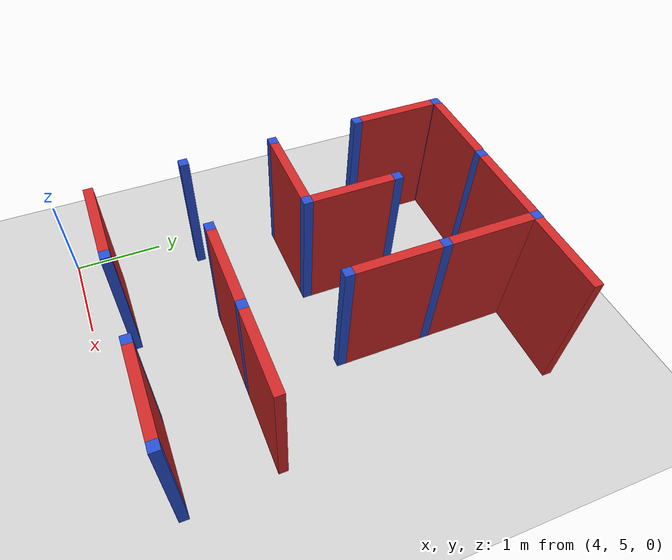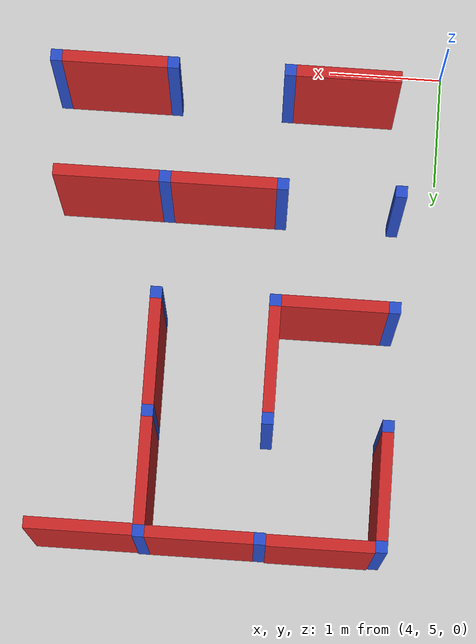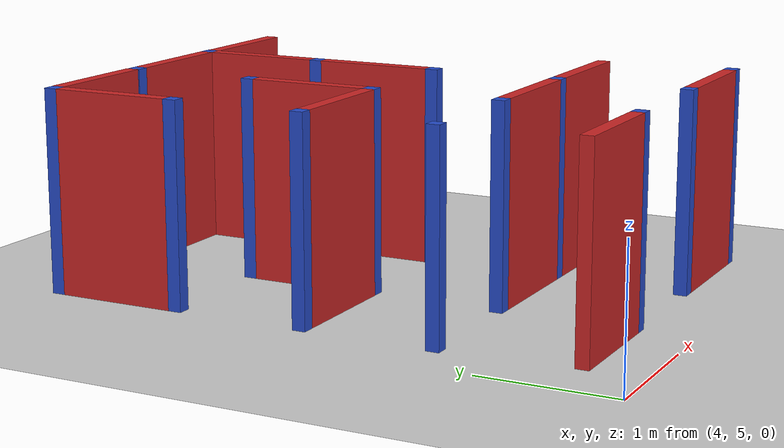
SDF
<sdf version="1.7">
 <world name="default">
  <model name="ground_plane">
   <static>1</static>
   <link name="link">
    <collision name="collision">
     <geometry><plane><normal>0 0 1</normal><size>100 100</size></plane></geometry>
     <surface><friction><ode><mu>100</mu><mu2>50</mu2></ode></friction></surface>
    </collision>
    <visual name="visual">
     <cast_shadows>0</cast_shadows>
     <geometry><plane><normal>0 0 1</normal><size>100 100</size></plane></geometry>
     <material>
      <script><uri>file://media/materials/scripts/gazebo.material</uri><name>Gazebo/Grey</name></script>
     </material>
    </visual>
   </link>
  </model>
  <model name="deneme">
   <link name="Joint_10_-6">
    <pose>10 -6 0 0 -0 0</pose>
    <visual name="Wall_2_Visual">
     <pose>0 0 0.75 0 -0 0</pose>
     <geometry><box><size>0.1 0.1 1.5</size></box></geometry>
     <material>
      <script><uri>file://media/materials/scripts/gazebo.material</uri><name>Gazebo/Blue</name></script>
      <ambient>0.996078 0.47451 0.0196078 1</ambient>
      <shader type="pixel"/>
     </material>
     <meta><layer>0</layer></meta>
    </visual>
    <collision name="Wall_2_Collision">
     <pose>0 0 0.75 0 -0 0</pose>
     <geometry><box><size>0.1 0.1 1.5</size></box></geometry>
     <surface>
      <friction>
       <ode><mu>1</mu><mu2>1</mu2><fdir1>0 0 0</fdir1><slip1>0</slip1><slip2>0</slip2></ode>
       <torsional>
        <coefficient>1</coefficient>
        <patch_radius>0</patch_radius>
        <surface_radius>0</surface_radius>
        <use_patch_radius>1</use_patch_radius>
        <ode><slip>0</slip></ode>
       </torsional>
      </friction>
      <bounce><restitution_coefficient>0</restitution_coefficient><threshold>1e+06</threshold></bounce>
      <contact>
       <collide_without_contact>0</collide_without_contact>
       <collide_without_contact_bitmask>1</collide_without_contact_bitmask>
       <collide_bitmask>1</collide_bitmask>
       <ode>
        <soft_cfm>0</soft_cfm>
        <soft_erp>0.2</soft_erp>
        <kp>1e+13</kp>
        <kd>1</kd>
        <max_vel>0.01</max_vel>
        <min_depth>0</min_depth>
       </ode>
       <bullet>
        <split_impulse>1</split_impulse>
        <split_impulse_penetration_threshold>-0.01</split_impulse_penetration_threshold>
        <soft_cfm>0</soft_cfm>
        <soft_erp>0.2</soft_erp>
        <kp>1e+13</kp>
        <kd>1</kd>
       </bullet>
      </contact>
     </surface>
    </collision>
   </link>
   <link name="Joint_10_-7">
    <pose>10 -7 0 0 -0 0</pose>
    <visual name="Wall_2_Visual">
     <pose>0 0 0.75 0 -0 0</pose>
     <geometry><box><size>0.1 0.1 1.5</size></box></geometry>
     <material>
      <script><uri>file://media/materials/scripts/gazebo.material</uri><name>Gazebo/Blue</name></script>
      <ambient>0.996078 0.47451 0.0196078 1</ambient>
      <shader type="pixel"/>
     </material>
     <meta><layer>0</layer></meta>
    </visual>
    <collision name="Wall_2_Collision">
     <pose>0 0 0.75 0 -0 0</pose>
     <geometry><box><size>0.1 0.1 1.5</size></box></geometry>
     <surface>
      <friction>
       <ode><mu>1</mu><mu2>1</mu2><fdir1>0 0 0</fdir1><slip1>0</slip1><slip2>0</slip2></ode>
       <torsional>
        <coefficient>1</coefficient>
        <patch_radius>0</patch_radius>
        <surface_radius>0</surface_radius>
        <use_patch_radius>1</use_patch_radius>
        <ode><slip>0</slip></ode>
       </torsional>
      </friction>
      <bounce><restitution_coefficient>0</restitution_coefficient><threshold>1e+06</threshold></bounce>
      <contact>
       <collide_without_contact>0</collide_without_contact>
       <collide_without_contact_bitmask>1</collide_without_contact_bitmask>
       <collide_bitmask>1</collide_bitmask>
       <ode>
        <soft_cfm>0</soft_cfm>
        <soft_erp>0.2</soft_erp>
        <kp>1e+13</kp>
        <kd>1</kd>
        <max_vel>0.01</max_vel>
        <min_depth>0</min_depth>
       </ode>
       <bullet>
        <split_impulse>1</split_impulse>
        <split_impulse_penetration_threshold>-0.01</split_impulse_penetration_threshold>
        <soft_cfm>0</soft_cfm>
        <soft_erp>0.2</soft_erp>
        <kp>1e+13</kp>
        <kd>1</kd>
       </bullet>
      </contact>
     </surface>
    </collision>
   </link>
   <link name="Joint_10_-8">
    <pose>10 -8 0 0 -0 0</pose>
    <visual name="Wall_2_Visual">
     <pose>0 0 0.75 0 -0 0</pose>
     <geometry><box><size>0.1 0.1 1.5</size></box></geometry>
     <material>
      <script><uri>file://media/materials/scripts/gazebo.material</uri><name>Gazebo/Blue</name></script>
      <ambient>0.996078 0.47451 0.0196078 1</ambient>
      <shader type="pixel"/>
     </material>
     <meta><layer>0</layer></meta>
    </visual>
    <collision name="Wall_2_Collision">
     <pose>0 0 0.75 0 -0 0</pose>
     <geometry><box><size>0.1 0.1 1.5</size></box></geometry>
     <surface>
      <friction>
       <ode><mu>1</mu><mu2>1</mu2><fdir1>0 0 0</fdir1><slip1>0</slip1><slip2>0</slip2></ode>
       <torsional>
        <coefficient>1</coefficient>
        <patch_radius>0</patch_radius>
        <surface_radius>0</surface_radius>
        <use_patch_radius>1</use_patch_radius>
        <ode><slip>0</slip></ode>
       </torsional>
      </friction>
      <bounce><restitution_coefficient>0</restitution_coefficient><threshold>1e+06</threshold></bounce>
      <contact>
       <collide_without_contact>0</collide_without_contact>
       <collide_without_contact_bitmask>1</collide_without_contact_bitmask>
       <collide_bitmask>1</collide_bitmask>
       <ode>
        <soft_cfm>0</soft_cfm>
        <soft_erp>0.2</soft_erp>
        <kp>1e+13</kp>
        <kd>1</kd>
        <max_vel>0.01</max_vel>
        <min_depth>0</min_depth>
       </ode>
       <bullet>
        <split_impulse>1</split_impulse>
        <split_impulse_penetration_threshold>-0.01</split_impulse_penetration_threshold>
        <soft_cfm>0</soft_cfm>
        <soft_erp>0.2</soft_erp>
        <kp>1e+13</kp>
        <kd>1</kd>
       </bullet>
      </contact>
     </surface>
    </collision>
   </link>
   <link name="Joint_10_-9">
    <pose>10 -9 0 0 -0 0</pose>
    <visual name="Wall_2_Visual">
     <pose>0 0 0.75 0 -0 0</pose>
     <geometry><box><size>0.1 0.1 1.5</size></box></geometry>
     <material>
      <script><uri>file://media/materials/scripts/gazebo.material</uri><name>Gazebo/Blue</name></script>
      <ambient>0.996078 0.47451 0.0196078 1</ambient>
      <shader type="pixel"/>
     </material>
     <meta><layer>0</layer></meta>
    </visual>
    <collision name="Wall_2_Collision">
     <pose>0 0 0.75 0 -0 0</pose>
     <geometry><box><size>0.1 0.1 1.5</size></box></geometry>
     <surface>
      <friction>
       <ode><mu>1</mu><mu2>1</mu2><fdir1>0 0 0</fdir1><slip1>0</slip1><slip2>0</slip2></ode>
       <torsional>
        <coefficient>1</coefficient>
        <patch_radius>0</patch_radius>
        <surface_radius>0</surface_radius>
        <use_patch_radius>1</use_patch_radius>
        <ode><slip>0</slip></ode>
       </torsional>
      </friction>
      <bounce><restitution_coefficient>0</restitution_coefficient><threshold>1e+06</threshold></bounce>
      <contact>
       <collide_without_contact>0</collide_without_contact>
       <collide_without_contact_bitmask>1</collide_without_contact_bitmask>
       <collide_bitmask>1</collide_bitmask>
       <ode>
        <soft_cfm>0</soft_cfm>
        <soft_erp>0.2</soft_erp>
        <kp>1e+13</kp>
        <kd>1</kd>
        <max_vel>0.01</max_vel>
        <min_depth>0</min_depth>
       </ode>
       <bullet>
        <split_impulse>1</split_impulse>
        <split_impulse_penetration_threshold>-0.01</split_impulse_penetration_threshold>
        <soft_cfm>0</soft_cfm>
        <soft_erp>0.2</soft_erp>
        <kp>1e+13</kp>
        <kd>1</kd>
       </bullet>
      </contact>
     </surface>
    </collision>
   </link>
   <link name="Joint_11_-10">
    <pose>11 -10 0 0 -0 0</pose>
    <visual name="Wall_2_Visual">
     <pose>0 0 0.75 0 -0 0</pose>
     <geometry><box><size>0.1 0.1 1.5</size></box></geometry>
     <material>
      <script><uri>file://media/materials/scripts/gazebo.material</uri><name>Gazebo/Blue</name></script>
      <ambient>0.996078 0.47451 0.0196078 1</ambient>
      <shader type="pixel"/>
     </material>
     <meta><layer>0</layer></meta>
    </visual>
    <collision name="Wall_2_Collision">
     <pose>0 0 0.75 0 -0 0</pose>
     <geometry><box><size>0.1 0.1 1.5</size></box></geometry>
     <surface>
      <friction>
       <ode><mu>1</mu><mu2>1</mu2><fdir1>0 0 0</fdir1><slip1>0</slip1><slip2>0</slip2></ode>
       <torsional>
        <coefficient>1</coefficient>
        <patch_radius>0</patch_radius>
        <surface_radius>0</surface_radius>
        <use_patch_radius>1</use_patch_radius>
        <ode><slip>0</slip></ode>
       </torsional>
      </friction>
      <bounce><restitution_coefficient>0</restitution_coefficient><threshold>1e+06</threshold></bounce>
      <contact>
       <collide_without_contact>0</collide_without_contact>
       <collide_without_contact_bitmask>1</collide_without_contact_bitmask>
       <collide_bitmask>1</collide_bitmask>
       <ode>
        <soft_cfm>0</soft_cfm>
        <soft_erp>0.2</soft_erp>
        <kp>1e+13</kp>
        <kd>1</kd>
        <max_vel>0.01</max_vel>
        <min_depth>0</min_depth>
       </ode>
       <bullet>
        <split_impulse>1</split_impulse>
        <split_impulse_penetration_threshold>-0.01</split_impulse_penetration_threshold>
        <soft_cfm>0</soft_cfm>
        <soft_erp>0.2</soft_erp>
        <kp>1e+13</kp>
        <kd>1</kd>
       </bullet>
      </contact>
     </surface>
    </collision>
   </link>
   <link name="Joint_11_-6">
    <pose>11 -6 0 0 -0 0</pose>
    <visual name="Wall_2_Visual">
     <pose>0 0 0.75 0 -0 0</pose>
     <geometry><box><size>0.1 0.1 1.5</size></box></geometry>
     <material>
      <script><uri>file://media/materials/scripts/gazebo.material</uri><name>Gazebo/Blue</name></script>
      <ambient>0.996078 0.47451 0.0196078 1</ambient>
      <shader type="pixel"/>
     </material>
     <meta><layer>0</layer></meta>
    </visual>
    <collision name="Wall_2_Collision">
     <pose>0 0 0.75 0 -0 0</pose>
     <geometry><box><size>0.1 0.1 1.5</size></box></geometry>
     <surface>
      <friction>
       <ode><mu>1</mu><mu2>1</mu2><fdir1>0 0 0</fdir1><slip1>0</slip1><slip2>0</slip2></ode>
       <torsional>
        <coefficient>1</coefficient>
        <patch_radius>0</patch_radius>
        <surface_radius>0</surface_radius>
        <use_patch_radius>1</use_patch_radius>
        <ode><slip>0</slip></ode>
       </torsional>
      </friction>
      <bounce><restitution_coefficient>0</restitution_coefficient><threshold>1e+06</threshold></bounce>
      <contact>
       <collide_without_contact>0</collide_without_contact>
       <collide_without_contact_bitmask>1</collide_without_contact_bitmask>
       <collide_bitmask>1</collide_bitmask>
       <ode>
        <soft_cfm>0</soft_cfm>
        <soft_erp>0.2</soft_erp>
        <kp>1e+13</kp>
        <kd>1</kd>
        <max_vel>0.01</max_vel>
        <min_depth>0</min_depth>
       </ode>
       <bullet>
        <split_impulse>1</split_impulse>
        <split_impulse_penetration_threshold>-0.01</split_impulse_penetration_threshold>
        <soft_cfm>0</soft_cfm>
        <soft_erp>0.2</soft_erp>
        <kp>1e+13</kp>
        <kd>1</kd>
       </bullet>
      </contact>
     </surface>
    </collision>
   </link>
   <link name="Joint_11_-7">
    <pose>11 -7 0 0 -0 0</pose>
    <visual name="Wall_2_Visual">
     <pose>0 0 0.75 0 -0 0</pose>
     <geometry><box><size>0.1 0.1 1.5</size></box></geometry>
     <material>
      <script><uri>file://media/materials/scripts/gazebo.material</uri><name>Gazebo/Blue</name></script>
      <ambient>0.996078 0.47451 0.0196078 1</ambient>
      <shader type="pixel"/>
     </material>
     <meta><layer>0</layer></meta>
    </visual>
    <collision name="Wall_2_Collision">
     <pose>0 0 0.75 0 -0 0</pose>
     <geometry><box><size>0.1 0.1 1.5</size></box></geometry>
     <surface>
      <friction>
       <ode><mu>1</mu><mu2>1</mu2><fdir1>0 0 0</fdir1><slip1>0</slip1><slip2>0</slip2></ode>
       <torsional>
        <coefficient>1</coefficient>
        <patch_radius>0</patch_radius>
        <surface_radius>0</surface_radius>
        <use_patch_radius>1</use_patch_radius>
        <ode><slip>0</slip></ode>
       </torsional>
      </friction>
      <bounce><restitution_coefficient>0</restitution_coefficient><threshold>1e+06</threshold></bounce>
      <contact>
       <collide_without_contact>0</collide_without_contact>
       <collide_without_contact_bitmask>1</collide_without_contact_bitmask>
       <collide_bitmask>1</collide_bitmask>
       <ode>
        <soft_cfm>0</soft_cfm>
        <soft_erp>0.2</soft_erp>
        <kp>1e+13</kp>
        <kd>1</kd>
        <max_vel>0.01</max_vel>
        <min_depth>0</min_depth>
       </ode>
       <bullet>
        <split_impulse>1</split_impulse>
        <split_impulse_penetration_threshold>-0.01</split_impulse_penetration_threshold>
        <soft_cfm>0</soft_cfm>
        <soft_erp>0.2</soft_erp>
        <kp>1e+13</kp>
        <kd>1</kd>
       </bullet>
      </contact>
     </surface>
    </collision>
   </link>
   <link name="Joint_11_-8">
    <pose>11 -8 0 0 -0 0</pose>
    <visual name="Wall_2_Visual">
     <pose>0 0 0.75 0 -0 0</pose>
     <geometry><box><size>0.1 0.1 1.5</size></box></geometry>
     <material>
      <script><uri>file://media/materials/scripts/gazebo.material</uri><name>Gazebo/Blue</name></script>
      <ambient>0.996078 0.47451 0.0196078 1</ambient>
      <shader type="pixel"/>
     </material>
     <meta><layer>0</layer></meta>
    </visual>
    <collision name="Wall_2_Collision">
     <pose>0 0 0.75 0 -0 0</pose>
     <geometry><box><size>0.1 0.1 1.5</size></box></geometry>
     <surface>
      <friction>
       <ode><mu>1</mu><mu2>1</mu2><fdir1>0 0 0</fdir1><slip1>0</slip1><slip2>0</slip2></ode>
       <torsional>
        <coefficient>1</coefficient>
        <patch_radius>0</patch_radius>
        <surface_radius>0</surface_radius>
        <use_patch_radius>1</use_patch_radius>
        <ode><slip>0</slip></ode>
       </torsional>
      </friction>
      <bounce><restitution_coefficient>0</restitution_coefficient><threshold>1e+06</threshold></bounce>
      <contact>
       <collide_without_contact>0</collide_without_contact>
       <collide_without_contact_bitmask>1</collide_without_contact_bitmask>
       <collide_bitmask>1</collide_bitmask>
       <ode>
        <soft_cfm>0</soft_cfm>
        <soft_erp>0.2</soft_erp>
        <kp>1e+13</kp>
        <kd>1</kd>
        <max_vel>0.01</max_vel>
        <min_depth>0</min_depth>
       </ode>
       <bullet>
        <split_impulse>1</split_impulse>
        <split_impulse_penetration_threshold>-0.01</split_impulse_penetration_threshold>
        <soft_cfm>0</soft_cfm>
        <soft_erp>0.2</soft_erp>
        <kp>1e+13</kp>
        <kd>1</kd>
       </bullet>
      </contact>
     </surface>
    </collision>
   </link>
   <link name="Joint_11_-9">
    <pose>11 -9 0 0 -0 0</pose>
    <visual name="Wall_2_Visual">
     <pose>0 0 0.75 0 -0 0</pose>
     <geometry><box><size>0.1 0.1 1.5</size></box></geometry>
     <material>
      <script><uri>file://media/materials/scripts/gazebo.material</uri><name>Gazebo/Blue</name></script>
      <ambient>0.996078 0.47451 0.0196078 1</ambient>
      <shader type="pixel"/>
     </material>
     <meta><layer>0</layer></meta>
    </visual>
    <collision name="Wall_2_Collision">
     <pose>0 0 0.75 0 -0 0</pose>
     <geometry><box><size>0.1 0.1 1.5</size></box></geometry>
     <surface>
      <friction>
       <ode><mu>1</mu><mu2>1</mu2><fdir1>0 0 0</fdir1><slip1>0</slip1><slip2>0</slip2></ode>
       <torsional>
        <coefficient>1</coefficient>
        <patch_radius>0</patch_radius>
        <surface_radius>0</surface_radius>
        <use_patch_radius>1</use_patch_radius>
        <ode><slip>0</slip></ode>
       </torsional>
      </friction>
      <bounce><restitution_coefficient>0</restitution_coefficient><threshold>1e+06</threshold></bounce>
      <contact>
       <collide_without_contact>0</collide_without_contact>
       <collide_without_contact_bitmask>1</collide_without_contact_bitmask>
       <collide_bitmask>1</collide_bitmask>
       <ode>
        <soft_cfm>0</soft_cfm>
        <soft_erp>0.2</soft_erp>
        <kp>1e+13</kp>
        <kd>1</kd>
        <max_vel>0.01</max_vel>
        <min_depth>0</min_depth>
       </ode>
       <bullet>
        <split_impulse>1</split_impulse>
        <split_impulse_penetration_threshold>-0.01</split_impulse_penetration_threshold>
        <soft_cfm>0</soft_cfm>
        <soft_erp>0.2</soft_erp>
        <kp>1e+13</kp>
        <kd>1</kd>
       </bullet>
      </contact>
     </surface>
    </collision>
   </link>
   <link name="Joint_12_-10">
    <pose>12 -10 0 0 -0 0</pose>
    <visual name="Wall_2_Visual">
     <pose>0 0 0.75 0 -0 0</pose>
     <geometry><box><size>0.1 0.1 1.5</size></box></geometry>
     <material>
      <script><uri>file://media/materials/scripts/gazebo.material</uri><name>Gazebo/Blue</name></script>
      <ambient>0.996078 0.47451 0.0196078 1</ambient>
      <shader type="pixel"/>
     </material>
     <meta><layer>0</layer></meta>
    </visual>
    <collision name="Wall_2_Collision">
     <pose>0 0 0.75 0 -0 0</pose>
     <geometry><box><size>0.1 0.1 1.5</size></box></geometry>
     <surface>
      <friction>
       <ode><mu>1</mu><mu2>1</mu2><fdir1>0 0 0</fdir1><slip1>0</slip1><slip2>0</slip2></ode>
       <torsional>
        <coefficient>1</coefficient>
        <patch_radius>0</patch_radius>
        <surface_radius>0</surface_radius>
        <use_patch_radius>1</use_patch_radius>
        <ode><slip>0</slip></ode>
       </torsional>
      </friction>
      <bounce><restitution_coefficient>0</restitution_coefficient><threshold>1e+06</threshold></bounce>
      <contact>
       <collide_without_contact>0</collide_without_contact>
       <collide_without_contact_bitmask>1</collide_without_contact_bitmask>
       <collide_bitmask>1</collide_bitmask>
       <ode>
        <soft_cfm>0</soft_cfm>
        <soft_erp>0.2</soft_erp>
        <kp>1e+13</kp>
        <kd>1</kd>
        <max_vel>0.01</max_vel>
        <min_depth>0</min_depth>
       </ode>
       <bullet>
        <split_impulse>1</split_impulse>
        <split_impulse_penetration_threshold>-0.01</split_impulse_penetration_threshold>
        <soft_cfm>0</soft_cfm>
        <soft_erp>0.2</soft_erp>
        <kp>1e+13</kp>
        <kd>1</kd>
       </bullet>
      </contact>
     </surface>
    </collision>
   </link>
   <link name="Joint_12_-6">
    <pose>12 -6 0 0 -0 0</pose>
    <visual name="Wall_2_Visual">
     <pose>0 0 0.75 0 -0 0</pose>
     <geometry><box><size>0.1 0.1 1.5</size></box></geometry>
     <material>
      <script><uri>file://media/materials/scripts/gazebo.material</uri><name>Gazebo/Blue</name></script>
      <ambient>0.996078 0.47451 0.0196078 1</ambient>
      <shader type="pixel"/>
     </material>
     <meta><layer>0</layer></meta>
    </visual>
    <collision name="Wall_2_Collision">
     <pose>0 0 0.75 0 -0 0</pose>
     <geometry><box><size>0.1 0.1 1.5</size></box></geometry>
     <surface>
      <friction>
       <ode><mu>1</mu><mu2>1</mu2><fdir1>0 0 0</fdir1><slip1>0</slip1><slip2>0</slip2></ode>
       <torsional>
        <coefficient>1</coefficient>
        <patch_radius>0</patch_radius>
        <surface_radius>0</surface_radius>
        <use_patch_radius>1</use_patch_radius>
        <ode><slip>0</slip></ode>
       </torsional>
      </friction>
      <bounce><restitution_coefficient>0</restitution_coefficient><threshold>1e+06</threshold></bounce>
      <contact>
       <collide_without_contact>0</collide_without_contact>
       <collide_without_contact_bitmask>1</collide_without_contact_bitmask>
       <collide_bitmask>1</collide_bitmask>
       <ode>
        <soft_cfm>0</soft_cfm>
        <soft_erp>0.2</soft_erp>
        <kp>1e+13</kp>
        <kd>1</kd>
        <max_vel>0.01</max_vel>
        <min_depth>0</min_depth>
       </ode>
       <bullet>
        <split_impulse>1</split_impulse>
        <split_impulse_penetration_threshold>-0.01</split_impulse_penetration_threshold>
        <soft_cfm>0</soft_cfm>
        <soft_erp>0.2</soft_erp>
        <kp>1e+13</kp>
        <kd>1</kd>
       </bullet>
      </contact>
     </surface>
    </collision>
   </link>
   <link name="Joint_12_-7">
    <pose>12 -7 0 0 -0 0</pose>
    <visual name="Wall_2_Visual">
     <pose>0 0 0.75 0 -0 0</pose>
     <geometry><box><size>0.1 0.1 1.5</size></box></geometry>
     <material>
      <script><uri>file://media/materials/scripts/gazebo.material</uri><name>Gazebo/Blue</name></script>
      <ambient>0.996078 0.47451 0.0196078 1</ambient>
      <shader type="pixel"/>
     </material>
     <meta><layer>0</layer></meta>
    </visual>
    <collision name="Wall_2_Collision">
     <pose>0 0 0.75 0 -0 0</pose>
     <geometry><box><size>0.1 0.1 1.5</size></box></geometry>
     <surface>
      <friction>
       <ode><mu>1</mu><mu2>1</mu2><fdir1>0 0 0</fdir1><slip1>0</slip1><slip2>0</slip2></ode>
       <torsional>
        <coefficient>1</coefficient>
        <patch_radius>0</patch_radius>
        <surface_radius>0</surface_radius>
        <use_patch_radius>1</use_patch_radius>
        <ode><slip>0</slip></ode>
       </torsional>
      </friction>
      <bounce><restitution_coefficient>0</restitution_coefficient><threshold>1e+06</threshold></bounce>
      <contact>
       <collide_without_contact>0</collide_without_contact>
       <collide_without_contact_bitmask>1</collide_without_contact_bitmask>
       <collide_bitmask>1</collide_bitmask>
       <ode>
        <soft_cfm>0</soft_cfm>
        <soft_erp>0.2</soft_erp>
        <kp>1e+13</kp>
        <kd>1</kd>
        <max_vel>0.01</max_vel>
        <min_depth>0</min_depth>
       </ode>
       <bullet>
        <split_impulse>1</split_impulse>
        <split_impulse_penetration_threshold>-0.01</split_impulse_penetration_threshold>
        <soft_cfm>0</soft_cfm>
        <soft_erp>0.2</soft_erp>
        <kp>1e+13</kp>
        <kd>1</kd>
       </bullet>
      </contact>
     </surface>
    </collision>
   </link>
   <link name="Joint_12_-8">
    <pose>12 -8 0 0 -0 0</pose>
    <visual name="Wall_2_Visual">
     <pose>0 0 0.75 0 -0 0</pose>
     <geometry><box><size>0.1 0.1 1.5</size></box></geometry>
     <material>
      <script><uri>file://media/materials/scripts/gazebo.material</uri><name>Gazebo/Blue</name></script>
      <ambient>0.996078 0.47451 0.0196078 1</ambient>
      <shader type="pixel"/>
     </material>
     <meta><layer>0</layer></meta>
    </visual>
    <collision name="Wall_2_Collision">
     <pose>0 0 0.75 0 -0 0</pose>
     <geometry><box><size>0.1 0.1 1.5</size></box></geometry>
     <surface>
      <friction>
       <ode><mu>1</mu><mu2>1</mu2><fdir1>0 0 0</fdir1><slip1>0</slip1><slip2>0</slip2></ode>
       <torsional>
        <coefficient>1</coefficient>
        <patch_radius>0</patch_radius>
        <surface_radius>0</surface_radius>
        <use_patch_radius>1</use_patch_radius>
        <ode><slip>0</slip></ode>
       </torsional>
      </friction>
      <bounce><restitution_coefficient>0</restitution_coefficient><threshold>1e+06</threshold></bounce>
      <contact>
       <collide_without_contact>0</collide_without_contact>
       <collide_without_contact_bitmask>1</collide_without_contact_bitmask>
       <collide_bitmask>1</collide_bitmask>
       <ode>
        <soft_cfm>0</soft_cfm>
        <soft_erp>0.2</soft_erp>
        <kp>1e+13</kp>
        <kd>1</kd>
        <max_vel>0.01</max_vel>
        <min_depth>0</min_depth>
       </ode>
       <bullet>
        <split_impulse>1</split_impulse>
        <split_impulse_penetration_threshold>-0.01</split_impulse_penetration_threshold>
        <soft_cfm>0</soft_cfm>
        <soft_erp>0.2</soft_erp>
        <kp>1e+13</kp>
        <kd>1</kd>
       </bullet>
      </contact>
     </surface>
    </collision>
   </link>
   <link name="Joint_12_-9">
    <pose>12 -9 0 0 -0 0</pose>
    <visual name="Wall_2_Visual">
     <pose>0 0 0.75 0 -0 0</pose>
     <geometry><box><size>0.1 0.1 1.5</size></box></geometry>
     <material>
      <script><uri>file://media/materials/scripts/gazebo.material</uri><name>Gazebo/Blue</name></script>
      <ambient>0.996078 0.47451 0.0196078 1</ambient>
      <shader type="pixel"/>
     </material>
     <meta><layer>0</layer></meta>
    </visual>
    <collision name="Wall_2_Collision">
     <pose>0 0 0.75 0 -0 0</pose>
     <geometry><box><size>0.1 0.1 1.5</size></box></geometry>
     <surface>
      <friction>
       <ode><mu>1</mu><mu2>1</mu2><fdir1>0 0 0</fdir1><slip1>0</slip1><slip2>0</slip2></ode>
       <torsional>
        <coefficient>1</coefficient>
        <patch_radius>0</patch_radius>
        <surface_radius>0</surface_radius>
        <use_patch_radius>1</use_patch_radius>
        <ode><slip>0</slip></ode>
       </torsional>
      </friction>
      <bounce><restitution_coefficient>0</restitution_coefficient><threshold>1e+06</threshold></bounce>
      <contact>
       <collide_without_contact>0</collide_without_contact>
       <collide_without_contact_bitmask>1</collide_without_contact_bitmask>
       <collide_bitmask>1</collide_bitmask>
       <ode>
        <soft_cfm>0</soft_cfm>
        <soft_erp>0.2</soft_erp>
        <kp>1e+13</kp>
        <kd>1</kd>
        <max_vel>0.01</max_vel>
        <min_depth>0</min_depth>
       </ode>
       <bullet>
        <split_impulse>1</split_impulse>
        <split_impulse_penetration_threshold>-0.01</split_impulse_penetration_threshold>
        <soft_cfm>0</soft_cfm>
        <soft_erp>0.2</soft_erp>
        <kp>1e+13</kp>
        <kd>1</kd>
       </bullet>
      </contact>
     </surface>
    </collision>
   </link>
   <link name="Joint_13_-10">
    <pose>13 -10 0 0 -0 0</pose>
    <visual name="Wall_2_Visual">
     <pose>0 0 0.75 0 -0 0</pose>
     <geometry><box><size>0.1 0.1 1.5</size></box></geometry>
     <material>
      <script><uri>file://media/materials/scripts/gazebo.material</uri><name>Gazebo/Blue</name></script>
      <ambient>0.996078 0.47451 0.0196078 1</ambient>
      <shader type="pixel"/>
     </material>
     <meta><layer>0</layer></meta>
    </visual>
    <collision name="Wall_2_Collision">
     <pose>0 0 0.75 0 -0 0</pose>
     <geometry><box><size>0.1 0.1 1.5</size></box></geometry>
     <surface>
      <friction>
       <ode><mu>1</mu><mu2>1</mu2><fdir1>0 0 0</fdir1><slip1>0</slip1><slip2>0</slip2></ode>
       <torsional>
        <coefficient>1</coefficient>
        <patch_radius>0</patch_radius>
        <surface_radius>0</surface_radius>
        <use_patch_radius>1</use_patch_radius>
        <ode><slip>0</slip></ode>
       </torsional>
      </friction>
      <bounce><restitution_coefficient>0</restitution_coefficient><threshold>1e+06</threshold></bounce>
      <contact>
       <collide_without_contact>0</collide_without_contact>
       <collide_without_contact_bitmask>1</collide_without_contact_bitmask>
       <collide_bitmask>1</collide_bitmask>
       <ode>
        <soft_cfm>0</soft_cfm>
        <soft_erp>0.2</soft_erp>
        <kp>1e+13</kp>
        <kd>1</kd>
        <max_vel>0.01</max_vel>
        <min_depth>0</min_depth>
       </ode>
       <bullet>
        <split_impulse>1</split_impulse>
        <split_impulse_penetration_threshold>-0.01</split_impulse_penetration_threshold>
        <soft_cfm>0</soft_cfm>
        <soft_erp>0.2</soft_erp>
        <kp>1e+13</kp>
        <kd>1</kd>
       </bullet>
      </contact>
     </surface>
    </collision>
   </link>
   <link name="Wall_10_10_h">
    <pose>10.5 -10 0 0 -0 0</pose>
    <visual name="Wall_0_Visual">
     <pose>0 0 0.75 0 -0 0</pose>
     <geometry><box><size>0.9 0.1 1.5</size></box></geometry>
     <material>
      <script><uri>file://media/materials/scripts/gazebo.material</uri><name>Gazebo/Red</name></script>
      <ambient>0.921569 0.807843 0.615686 1</ambient>
      <shader type="pixel"/>
     </material>
     <meta><layer>0</layer></meta>
    </visual>
    <collision name="Wall_0_Collision">
     <pose>0 0 0.75 0 -0 0</pose>
     <geometry><box><size>0.9 0.1 1.5</size></box></geometry>
     <surface>
      <friction>
       <ode><mu>1</mu><mu2>1</mu2><fdir1>0 0 0</fdir1><slip1>0</slip1><slip2>0</slip2></ode>
       <torsional>
        <coefficient>1</coefficient>
        <patch_radius>0</patch_radius>
        <surface_radius>0</surface_radius>
        <use_patch_radius>1</use_patch_radius>
        <ode><slip>0</slip></ode>
       </torsional>
      </friction>
      <bounce><restitution_coefficient>0</restitution_coefficient><threshold>1e+06</threshold></bounce>
      <contact>
       <collide_without_contact>0</collide_without_contact>
       <collide_without_contact_bitmask>1</collide_without_contact_bitmask>
       <collide_bitmask>1</collide_bitmask>
       <ode>
        <soft_cfm>0</soft_cfm>
        <soft_erp>0.2</soft_erp>
        <kp>1e+13</kp>
        <kd>1</kd>
        <max_vel>0.01</max_vel>
        <min_depth>0</min_depth>
       </ode>
       <bullet>
        <split_impulse>1</split_impulse>
        <split_impulse_penetration_threshold>-0.01</split_impulse_penetration_threshold>
        <soft_cfm>0</soft_cfm>
        <soft_erp>0.2</soft_erp>
        <kp>1e+13</kp>
        <kd>1</kd>
       </bullet>
      </contact>
     </surface>
    </collision>
   </link>
   <link name="Wall_10_5_h">
    <pose>10.5 -5.99282 0 0 -0 0</pose>
    <visual name="Wall_0_Visual">
     <pose>0 0 0.75 0 -0 0</pose>
     <geometry><box><size>0.9 0.1 1.5</size></box></geometry>
     <material>
      <script><uri>file://media/materials/scripts/gazebo.material</uri><name>Gazebo/Red</name></script>
      <ambient>0.921569 0.807843 0.615686 1</ambient>
      <shader type="pixel"/>
     </material>
     <meta><layer>0</layer></meta>
    </visual>
    <collision name="Wall_0_Collision">
     <pose>0 0 0.75 0 -0 0</pose>
     <geometry><box><size>0.9 0.1 1.5</size></box></geometry>
     <surface>
      <friction>
       <ode><mu>1</mu><mu2>1</mu2><fdir1>0 0 0</fdir1><slip1>0</slip1><slip2>0</slip2></ode>
       <torsional>
        <coefficient>1</coefficient>
        <patch_radius>0</patch_radius>
        <surface_radius>0</surface_radius>
        <use_patch_radius>1</use_patch_radius>
        <ode><slip>0</slip></ode>
       </torsional>
      </friction>
      <bounce><restitution_coefficient>0</restitution_coefficient><threshold>1e+06</threshold></bounce>
      <contact>
       <collide_without_contact>0</collide_without_contact>
       <collide_without_contact_bitmask>1</collide_without_contact_bitmask>
       <collide_bitmask>1</collide_bitmask>
       <ode>
        <soft_cfm>0</soft_cfm>
        <soft_erp>0.2</soft_erp>
        <kp>1e+13</kp>
        <kd>1</kd>
        <max_vel>0.01</max_vel>
        <min_depth>0</min_depth>
       </ode>
       <bullet>
        <split_impulse>1</split_impulse>
        <split_impulse_penetration_threshold>-0.01</split_impulse_penetration_threshold>
        <soft_cfm>0</soft_cfm>
        <soft_erp>0.2</soft_erp>
        <kp>1e+13</kp>
        <kd>1</kd>
       </bullet>
      </contact>
     </surface>
    </collision>
   </link>
   <link name="Wall_10_6_v">
    <pose>10 -6.5 0 0 -0 1.5708</pose>
    <visual name="Wall_0_Visual">
     <pose>0 0 0.75 0 -0 0</pose>
     <geometry><box><size>0.9 0.1 1.5</size></box></geometry>
     <material>
      <script><uri>file://media/materials/scripts/gazebo.material</uri><name>Gazebo/Red</name></script>
      <ambient>0.921569 0.807843 0.615686 1</ambient>
      <shader type="pixel"/>
     </material>
     <meta><layer>0</layer></meta>
    </visual>
    <collision name="Wall_0_Collision">
     <pose>0 0 0.75 0 -0 0</pose>
     <geometry><box><size>0.9 0.1 1.5</size></box></geometry>
     <surface>
      <friction>
       <ode><mu>1</mu><mu2>1</mu2><fdir1>0 0 0</fdir1><slip1>0</slip1><slip2>0</slip2></ode>
       <torsional>
        <coefficient>1</coefficient>
        <patch_radius>0</patch_radius>
        <surface_radius>0</surface_radius>
        <use_patch_radius>1</use_patch_radius>
        <ode><slip>0</slip></ode>
       </torsional>
      </friction>
      <bounce><restitution_coefficient>0</restitution_coefficient><threshold>1e+06</threshold></bounce>
      <contact>
       <collide_without_contact>0</collide_without_contact>
       <collide_without_contact_bitmask>1</collide_without_contact_bitmask>
       <collide_bitmask>1</collide_bitmask>
       <ode>
        <soft_cfm>0</soft_cfm>
        <soft_erp>0.2</soft_erp>
        <kp>1e+13</kp>
        <kd>1</kd>
        <max_vel>0.01</max_vel>
        <min_depth>0</min_depth>
       </ode>
       <bullet>
        <split_impulse>1</split_impulse>
        <split_impulse_penetration_threshold>-0.01</split_impulse_penetration_threshold>
        <soft_cfm>0</soft_cfm>
        <soft_erp>0.2</soft_erp>
        <kp>1e+13</kp>
        <kd>1</kd>
       </bullet>
      </contact>
     </surface>
    </collision>
   </link>
   <link name="Wall_10_8_h">
    <pose>10.5 -8 0 0 -0 0</pose>
    <visual name="Wall_0_Visual">
     <pose>0 0 0.75 0 -0 0</pose>
     <geometry><box><size>0.9 0.1 1.5</size></box></geometry>
     <material>
      <script><uri>file://media/materials/scripts/gazebo.material</uri><name>Gazebo/Red</name></script>
      <ambient>0.921569 0.807843 0.615686 1</ambient>
      <shader type="pixel"/>
     </material>
     <meta><layer>0</layer></meta>
    </visual>
    <collision name="Wall_0_Collision">
     <pose>0 0 0.75 0 -0 0</pose>
     <geometry><box><size>0.9 0.1 1.5</size></box></geometry>
     <surface>
      <friction>
       <ode><mu>1</mu><mu2>1</mu2><fdir1>0 0 0</fdir1><slip1>0</slip1><slip2>0</slip2></ode>
       <torsional>
        <coefficient>1</coefficient>
        <patch_radius>0</patch_radius>
        <surface_radius>0</surface_radius>
        <use_patch_radius>1</use_patch_radius>
        <ode><slip>0</slip></ode>
       </torsional>
      </friction>
      <bounce><restitution_coefficient>0</restitution_coefficient><threshold>1e+06</threshold></bounce>
      <contact>
       <collide_without_contact>0</collide_without_contact>
       <collide_without_contact_bitmask>1</collide_without_contact_bitmask>
       <collide_bitmask>1</collide_bitmask>
       <ode>
        <soft_cfm>0</soft_cfm>
        <soft_erp>0.2</soft_erp>
        <kp>1e+13</kp>
        <kd>1</kd>
        <max_vel>0.01</max_vel>
        <min_depth>0</min_depth>
       </ode>
       <bullet>
        <split_impulse>1</split_impulse>
        <split_impulse_penetration_threshold>-0.01</split_impulse_penetration_threshold>
        <soft_cfm>0</soft_cfm>
        <soft_erp>0.2</soft_erp>
        <kp>1e+13</kp>
        <kd>1</kd>
       </bullet>
      </contact>
     </surface>
    </collision>
   </link>
   <link name="Wall_11_6_h">
    <pose>11.5 -6 0 0 -0 0</pose>
    <visual name="Wall_0_Visual">
     <pose>0 0 0.75 0 -0 0</pose>
     <geometry><box><size>0.9 0.1 1.5</size></box></geometry>
     <material>
      <script><uri>file://media/materials/scripts/gazebo.material</uri><name>Gazebo/Red</name></script>
      <ambient>0.921569 0.807843 0.615686 1</ambient>
      <shader type="pixel"/>
     </material>
     <meta><layer>0</layer></meta>
    </visual>
    <collision name="Wall_0_Collision">
     <pose>0 0 0.75 0 -0 0</pose>
     <geometry><box><size>0.9 0.1 1.5</size></box></geometry>
     <surface>
      <friction>
       <ode><mu>1</mu><mu2>1</mu2><fdir1>0 0 0</fdir1><slip1>0</slip1><slip2>0</slip2></ode>
       <torsional>
        <coefficient>1</coefficient>
        <patch_radius>0</patch_radius>
        <surface_radius>0</surface_radius>
        <use_patch_radius>1</use_patch_radius>
        <ode><slip>0</slip></ode>
       </torsional>
      </friction>
      <bounce><restitution_coefficient>0</restitution_coefficient><threshold>1e+06</threshold></bounce>
      <contact>
       <collide_without_contact>0</collide_without_contact>
       <collide_without_contact_bitmask>1</collide_without_contact_bitmask>
       <collide_bitmask>1</collide_bitmask>
       <ode>
        <soft_cfm>0</soft_cfm>
        <soft_erp>0.2</soft_erp>
        <kp>1e+13</kp>
        <kd>1</kd>
        <max_vel>0.01</max_vel>
        <min_depth>0</min_depth>
       </ode>
       <bullet>
        <split_impulse>1</split_impulse>
        <split_impulse_penetration_threshold>-0.01</split_impulse_penetration_threshold>
        <soft_cfm>0</soft_cfm>
        <soft_erp>0.2</soft_erp>
        <kp>1e+13</kp>
        <kd>1</kd>
       </bullet>
      </contact>
     </surface>
    </collision>
   </link>
   <link name="Wall_11_7_v">
    <pose>11 -7.5 0 0 -0 1.5708</pose>
    <visual name="Wall_0_Visual">
     <pose>0 0 0.75 0 -0 0</pose>
     <geometry><box><size>0.9 0.1 1.5</size></box></geometry>
     <material>
      <script><uri>file://media/materials/scripts/gazebo.material</uri><name>Gazebo/Red</name></script>
      <ambient>0.921569 0.807843 0.615686 1</ambient>
      <shader type="pixel"/>
     </material>
     <meta><layer>0</layer></meta>
    </visual>
    <collision name="Wall_0_Collision">
     <pose>0 0 0.75 0 -0 0</pose>
     <geometry><box><size>0.9 0.1 1.5</size></box></geometry>
     <surface>
      <friction>
       <ode><mu>1</mu><mu2>1</mu2><fdir1>0 0 0</fdir1><slip1>0</slip1><slip2>0</slip2></ode>
       <torsional>
        <coefficient>1</coefficient>
        <patch_radius>0</patch_radius>
        <surface_radius>0</surface_radius>
        <use_patch_radius>1</use_patch_radius>
        <ode><slip>0</slip></ode>
       </torsional>
      </friction>
      <bounce><restitution_coefficient>0</restitution_coefficient><threshold>1e+06</threshold></bounce>
      <contact>
       <collide_without_contact>0</collide_without_contact>
       <collide_without_contact_bitmask>1</collide_without_contact_bitmask>
       <collide_bitmask>1</collide_bitmask>
       <ode>
        <soft_cfm>0</soft_cfm>
        <soft_erp>0.2</soft_erp>
        <kp>1e+13</kp>
        <kd>1</kd>
        <max_vel>0.01</max_vel>
        <min_depth>0</min_depth>
       </ode>
       <bullet>
        <split_impulse>1</split_impulse>
        <split_impulse_penetration_threshold>-0.01</split_impulse_penetration_threshold>
        <soft_cfm>0</soft_cfm>
        <soft_erp>0.2</soft_erp>
        <kp>1e+13</kp>
        <kd>1</kd>
       </bullet>
      </contact>
     </surface>
    </collision>
   </link>
   <link name="Wall_11_9_h">
    <pose>11.5 -9 0 0 -0 0</pose>
    <visual name="Wall_0_Visual">
     <pose>0 0 0.75 0 -0 0</pose>
     <geometry><box><size>0.9 0.1 1.5</size></box></geometry>
     <material>
      <script><uri>file://media/materials/scripts/gazebo.material</uri><name>Gazebo/Red</name></script>
      <ambient>0.921569 0.807843 0.615686 1</ambient>
      <shader type="pixel"/>
     </material>
     <meta><layer>0</layer></meta>
    </visual>
    <collision name="Wall_0_Collision">
     <pose>0 0 0.75 0 -0 0</pose>
     <geometry><box><size>0.9 0.1 1.5</size></box></geometry>
     <surface>
      <friction>
       <ode><mu>1</mu><mu2>1</mu2><fdir1>0 0 0</fdir1><slip1>0</slip1><slip2>0</slip2></ode>
       <torsional>
        <coefficient>1</coefficient>
        <patch_radius>0</patch_radius>
        <surface_radius>0</surface_radius>
        <use_patch_radius>1</use_patch_radius>
        <ode><slip>0</slip></ode>
       </torsional>
      </friction>
      <bounce><restitution_coefficient>0</restitution_coefficient><threshold>1e+06</threshold></bounce>
      <contact>
       <collide_without_contact>0</collide_without_contact>
       <collide_without_contact_bitmask>1</collide_without_contact_bitmask>
       <collide_bitmask>1</collide_bitmask>
       <ode>
        <soft_cfm>0</soft_cfm>
        <soft_erp>0.2</soft_erp>
        <kp>1e+13</kp>
        <kd>1</kd>
        <max_vel>0.01</max_vel>
        <min_depth>0</min_depth>
       </ode>
       <bullet>
        <split_impulse>1</split_impulse>
        <split_impulse_penetration_threshold>-0.01</split_impulse_penetration_threshold>
        <soft_cfm>0</soft_cfm>
        <soft_erp>0.2</soft_erp>
        <kp>1e+13</kp>
        <kd>1</kd>
       </bullet>
      </contact>
     </surface>
    </collision>
   </link>
   <link name="Wall_12_10_h">
    <pose>12.5 -10 0 0 -0 0</pose>
    <visual name="Wall_0_Visual">
     <pose>0 0 0.75 0 -0 0</pose>
     <geometry><box><size>0.9 0.1 1.5</size></box></geometry>
     <material>
      <script><uri>file://media/materials/scripts/gazebo.material</uri><name>Gazebo/Red</name></script>
      <ambient>0.921569 0.807843 0.615686 1</ambient>
      <shader type="pixel"/>
     </material>
     <meta><layer>0</layer></meta>
    </visual>
    <collision name="Wall_0_Collision">
     <pose>0 0 0.75 0 -0 0</pose>
     <geometry><box><size>0.9 0.1 1.5</size></box></geometry>
     <surface>
      <friction>
       <ode><mu>1</mu><mu2>1</mu2><fdir1>0 0 0</fdir1><slip1>0</slip1><slip2>0</slip2></ode>
       <torsional>
        <coefficient>1</coefficient>
        <patch_radius>0</patch_radius>
        <surface_radius>0</surface_radius>
        <use_patch_radius>1</use_patch_radius>
        <ode><slip>0</slip></ode>
       </torsional>
      </friction>
      <bounce><restitution_coefficient>0</restitution_coefficient><threshold>1e+06</threshold></bounce>
      <contact>
       <collide_without_contact>0</collide_without_contact>
       <collide_without_contact_bitmask>1</collide_without_contact_bitmask>
       <collide_bitmask>1</collide_bitmask>
       <ode>
        <soft_cfm>0</soft_cfm>
        <soft_erp>0.2</soft_erp>
        <kp>1e+13</kp>
        <kd>1</kd>
        <max_vel>0.01</max_vel>
        <min_depth>0</min_depth>
       </ode>
       <bullet>
        <split_impulse>1</split_impulse>
        <split_impulse_penetration_threshold>-0.01</split_impulse_penetration_threshold>
        <soft_cfm>0</soft_cfm>
        <soft_erp>0.2</soft_erp>
        <kp>1e+13</kp>
        <kd>1</kd>
       </bullet>
      </contact>
     </surface>
    </collision>
   </link>
   <link name="Wall_12_4_h">
    <pose>12.5 -6.00806 0 0 -0 0</pose>
    <visual name="Wall_0_Visual">
     <pose>0 0 0.75 0 -0 0</pose>
     <geometry><box><size>0.9 0.1 1.5</size></box></geometry>
     <material>
      <script><uri>file://media/materials/scripts/gazebo.material</uri><name>Gazebo/Red</name></script>
      <ambient>0.921569 0.807843 0.615686 1</ambient>
      <shader type="pixel"/>
     </material>
     <meta><layer>0</layer></meta>
    </visual>
    <collision name="Wall_0_Collision">
     <pose>0 0 0.75 0 -0 0</pose>
     <geometry><box><size>0.9 0.1 1.5</size></box></geometry>
     <surface>
      <friction>
       <ode><mu>1</mu><mu2>1</mu2><fdir1>0 0 0</fdir1><slip1>0</slip1><slip2>0</slip2></ode>
       <torsional>
        <coefficient>1</coefficient>
        <patch_radius>0</patch_radius>
        <surface_radius>0</surface_radius>
        <use_patch_radius>1</use_patch_radius>
        <ode><slip>0</slip></ode>
       </torsional>
      </friction>
      <bounce><restitution_coefficient>0</restitution_coefficient><threshold>1e+06</threshold></bounce>
      <contact>
       <collide_without_contact>0</collide_without_contact>
       <collide_without_contact_bitmask>1</collide_without_contact_bitmask>
       <collide_bitmask>1</collide_bitmask>
       <ode>
        <soft_cfm>0</soft_cfm>
        <soft_erp>0.2</soft_erp>
        <kp>1e+13</kp>
        <kd>1</kd>
        <max_vel>0.01</max_vel>
        <min_depth>0</min_depth>
       </ode>
       <bullet>
        <split_impulse>1</split_impulse>
        <split_impulse_penetration_threshold>-0.01</split_impulse_penetration_threshold>
        <soft_cfm>0</soft_cfm>
        <soft_erp>0.2</soft_erp>
        <kp>1e+13</kp>
        <kd>1</kd>
       </bullet>
      </contact>
     </surface>
    </collision>
   </link>
   <link name="Wall_12_6_v">
    <pose>12 -6.5 0 0 -0 1.5708</pose>
    <visual name="Wall_0_Visual">
     <pose>0 0 0.75 0 -0 0</pose>
     <geometry><box><size>0.9 0.1 1.5</size></box></geometry>
     <material>
      <script><uri>file://media/materials/scripts/gazebo.material</uri><name>Gazebo/Red</name></script>
      <ambient>0.921569 0.807843 0.615686 1</ambient>
      <shader type="pixel"/>
     </material>
     <meta><layer>0</layer></meta>
    </visual>
    <collision name="Wall_0_Collision">
     <pose>0 0 0.75 0 -0 0</pose>
     <geometry><box><size>0.9 0.1 1.5</size></box></geometry>
     <surface>
      <friction>
       <ode><mu>1</mu><mu2>1</mu2><fdir1>0 0 0</fdir1><slip1>0</slip1><slip2>0</slip2></ode>
       <torsional>
        <coefficient>1</coefficient>
        <patch_radius>0</patch_radius>
        <surface_radius>0</surface_radius>
        <use_patch_radius>1</use_patch_radius>
        <ode><slip>0</slip></ode>
       </torsional>
      </friction>
      <bounce><restitution_coefficient>0</restitution_coefficient><threshold>1e+06</threshold></bounce>
      <contact>
       <collide_without_contact>0</collide_without_contact>
       <collide_without_contact_bitmask>1</collide_without_contact_bitmask>
       <collide_bitmask>1</collide_bitmask>
       <ode>
        <soft_cfm>0</soft_cfm>
        <soft_erp>0.2</soft_erp>
        <kp>1e+13</kp>
        <kd>1</kd>
        <max_vel>0.01</max_vel>
        <min_depth>0</min_depth>
       </ode>
       <bullet>
        <split_impulse>1</split_impulse>
        <split_impulse_penetration_threshold>-0.01</split_impulse_penetration_threshold>
        <soft_cfm>0</soft_cfm>
        <soft_erp>0.2</soft_erp>
        <kp>1e+13</kp>
        <kd>1</kd>
       </bullet>
      </contact>
     </surface>
    </collision>
   </link>
   <link name="Wall_12_7_v">
    <pose>12 -7.5 0 0 -0 1.5708</pose>
    <visual name="Wall_0_Visual">
     <pose>0 0 0.75 0 -0 0</pose>
     <geometry><box><size>0.9 0.1 1.5</size></box></geometry>
     <material>
      <script><uri>file://media/materials/scripts/gazebo.material</uri><name>Gazebo/Red</name></script>
      <ambient>0.921569 0.807843 0.615686 1</ambient>
      <shader type="pixel"/>
     </material>
     <meta><layer>0</layer></meta>
    </visual>
    <collision name="Wall_0_Collision">
     <pose>0 0 0.75 0 -0 0</pose>
     <geometry><box><size>0.9 0.1 1.5</size></box></geometry>
     <surface>
      <friction>
       <ode><mu>1</mu><mu2>1</mu2><fdir1>0 0 0</fdir1><slip1>0</slip1><slip2>0</slip2></ode>
       <torsional>
        <coefficient>1</coefficient>
        <patch_radius>0</patch_radius>
        <surface_radius>0</surface_radius>
        <use_patch_radius>1</use_patch_radius>
        <ode><slip>0</slip></ode>
       </torsional>
      </friction>
      <bounce><restitution_coefficient>0</restitution_coefficient><threshold>1e+06</threshold></bounce>
      <contact>
       <collide_without_contact>0</collide_without_contact>
       <collide_without_contact_bitmask>1</collide_without_contact_bitmask>
       <collide_bitmask>1</collide_bitmask>
       <ode>
        <soft_cfm>0</soft_cfm>
        <soft_erp>0.2</soft_erp>
        <kp>1e+13</kp>
        <kd>1</kd>
        <max_vel>0.01</max_vel>
        <min_depth>0</min_depth>
       </ode>
       <bullet>
        <split_impulse>1</split_impulse>
        <split_impulse_penetration_threshold>-0.01</split_impulse_penetration_threshold>
        <soft_cfm>0</soft_cfm>
        <soft_erp>0.2</soft_erp>
        <kp>1e+13</kp>
        <kd>1</kd>
       </bullet>
      </contact>
     </surface>
    </collision>
   </link>
   <link name="Wall_12_9_h">
    <pose>12.5 -9 0 0 -0 0</pose>
    <visual name="Wall_0_Visual">
     <pose>0 0 0.75 0 -0 0</pose>
     <geometry><box><size>0.9 0.1 1.5</size></box></geometry>
     <material>
      <script><uri>file://media/materials/scripts/gazebo.material</uri><name>Gazebo/Red</name></script>
      <ambient>0.921569 0.807843 0.615686 1</ambient>
      <shader type="pixel"/>
     </material>
     <meta><layer>0</layer></meta>
    </visual>
    <collision name="Wall_0_Collision">
     <pose>0 0 0.75 0 -0 0</pose>
     <geometry><box><size>0.9 0.1 1.5</size></box></geometry>
     <surface>
      <friction>
       <ode><mu>1</mu><mu2>1</mu2><fdir1>0 0 0</fdir1><slip1>0</slip1><slip2>0</slip2></ode>
       <torsional>
        <coefficient>1</coefficient>
        <patch_radius>0</patch_radius>
        <surface_radius>0</surface_radius>
        <use_patch_radius>1</use_patch_radius>
        <ode><slip>0</slip></ode>
       </torsional>
      </friction>
      <bounce><restitution_coefficient>0</restitution_coefficient><threshold>1e+06</threshold></bounce>
      <contact>
       <collide_without_contact>0</collide_without_contact>
       <collide_without_contact_bitmask>1</collide_without_contact_bitmask>
       <collide_bitmask>1</collide_bitmask>
       <ode>
        <soft_cfm>0</soft_cfm>
        <soft_erp>0.2</soft_erp>
        <kp>1e+13</kp>
        <kd>1</kd>
        <max_vel>0.01</max_vel>
        <min_depth>0</min_depth>
       </ode>
       <bullet>
        <split_impulse>1</split_impulse>
        <split_impulse_penetration_threshold>-0.01</split_impulse_penetration_threshold>
        <soft_cfm>0</soft_cfm>
        <soft_erp>0.2</soft_erp>
        <kp>1e+13</kp>
        <kd>1</kd>
       </bullet>
      </contact>
     </surface>
    </collision>
   </link>
   <static>1</static>
   <pose>-5.63597 15.4352 0 0 -0 0</pose>
  </model>
 </world>
</sdf>
